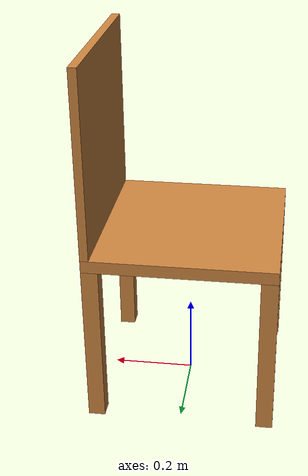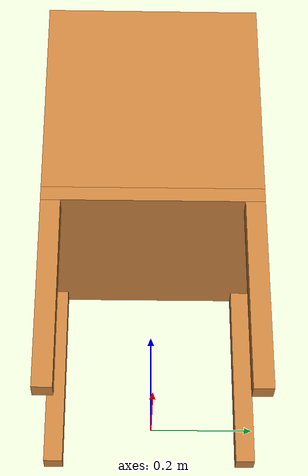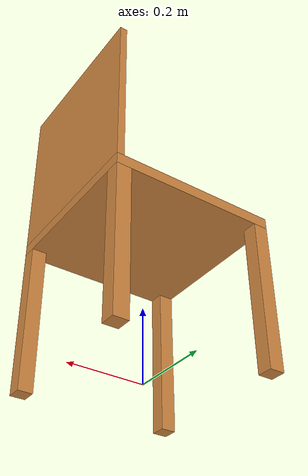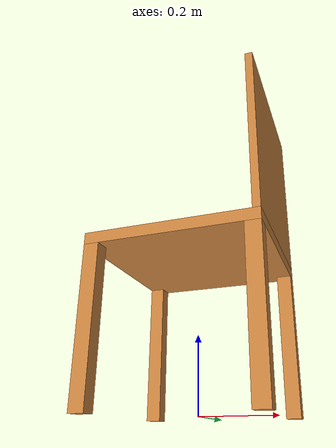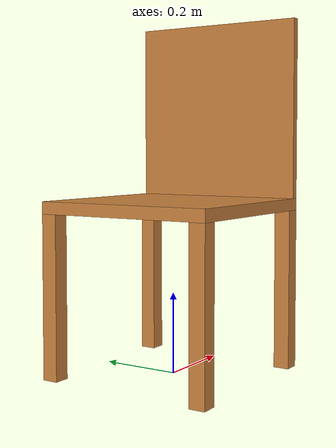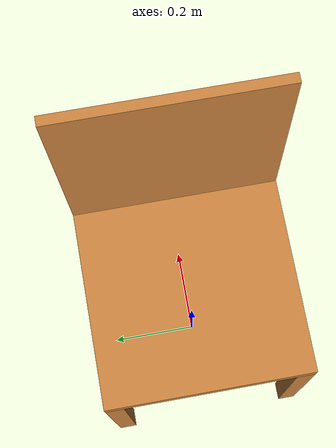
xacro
<?xml version="1.0"?>

<robot name="silla" xmlns:xacro="http://www.ros.org/wiki/xacro">

<xacro:property name="altura_respaldo" value="0.45" />
<xacro:property name="altura" value="0.4" />
<xacro:property name="ancho" value="0.45" />
<xacro:property name="largo" value="0.45" />

<link name="world" />

<joint name="silla" type="floating">
  <parent link="world"/>
  <child link="silla_link"/>
  <origin xyz="0 0 0" rpy="0 0 0" />
</joint>

<link name="silla_link">
  <visual>
    <geometry>
      <box size="${largo} ${ancho} 0.03" />
    </geometry>
    <origin rpy="0 0 0" xyz="0 0 ${(0.03/2)+altura}" />
      <material name="wood">
		<color rgba="${205/255} ${133/255} ${63/255} 1" />
    </material>
  </visual>
  <collision>
    <origin rpy="0 0 0" xyz="0 0 ${(0.03/2)+altura}" />
    <geometry>
      <box size="${largo} ${ancho} 0.03" />
    </geometry>
  </collision>
  <inertial>
    <origin rpy="0 0 0" xyz="0 0 ${(0.03/2)+altura}" />
    <mass value="1" />
      <inertia ixx="0.1" ixy="0.0" ixz="0.0" iyy="0.1" iyz="0.0" izz="0.1"/>
  </inertial>
</link>

<joint name="respaldo" type="fixed">
  <parent link="silla_link"/>
  <child link="respaldo_link"/>
  <origin xyz="${(largo/2)-(0.02/2)} 0 ${altura+0.03}" rpy="0 0 0" />
</joint>

<link name="respaldo_link">
  <visual>
    <geometry>
      <box size="0.02 ${ancho} ${altura_respaldo}" />
    </geometry>
    <origin rpy="0 0 0" xyz="0 0 ${altura_respaldo/2}" />
      <material name="wood" />
  </visual>
  <collision>
    <origin rpy="0 0 0" xyz="0 0 ${altura_respaldo/2}" />
    <geometry>
      <box size="0.02 ${ancho} ${altura_respaldo}" />
    </geometry>
  </collision>
  <inertial>
    <origin rpy="0 0 0" xyz="0 0 ${altura_respaldo/2}" />
    <mass value="0.2" />
      <inertia ixx="0.1" ixy="0.0" ixz="0.0" iyy="0.1" iyz="0.0" izz="0.1"/>
  </inertial>
</link>

<xacro:macro name="pata" params="id refx refy">
<joint name="pata_${id}" type="fixed">
  <parent link="silla_link"/>
  <child link="pata_${id}_link"/>
  <origin xyz="${refx*((largo/2)-0.02)} ${refy*((ancho/2)-0.02)} 0" rpy="0 0 0" />
</joint>

<link name="pata_${id}_link">
  <visual>
    <geometry>
      <box size="0.04 0.04 ${altura}" />
    </geometry>
    <origin rpy="0 0 0" xyz="0 0 ${altura/2}" />
      <material name="wood" />
  </visual>
  <collision>
    <origin rpy="0 0 0" xyz="0 0 ${altura/2}" />
    <geometry>
      <box size="0.04 0.04 ${altura}" />
    </geometry>
  </collision>
  <inertial>
    <origin rpy="0 0 0" xyz="0 0 ${altura/2}" />
    <mass value="0.2" />
      <inertia ixx="0.1" ixy="0.0" ixz="0.0" iyy="0.1" iyz="0.0" izz="0.1"/>
  </inertial>
</link>
</xacro:macro>

<xacro:pata id="1" refx="1" refy="1"/>
<xacro:pata id="2" refx="1" refy="-1"/>
<xacro:pata id="3" refx="-1" refy="-1"/>
<xacro:pata id="4" refx="-1" refy="1"/>

<gazebo reference="silla_link">
  <material>Gazebo/Grey</material>
  <mu1>1</mu1>
  <mu2>1</mu2>
  <selfCollide>true</selfCollide>
  <turnGravityOff>false</turnGravityOff>
</gazebo>

<gazebo reference="respaldo_link">
  <material>Gazebo/Grey</material>
  <mu1>1</mu1>
  <mu2>1</mu2>
  <selfCollide>true</selfCollide>
  <turnGravityOff>false</turnGravityOff>
</gazebo>

<xacro:macro name="gazebo_pata" params="id">
<gazebo reference="pata_${id}_link">
  <material>Gazebo/Wood</material>
  <mu1>1</mu1>
  <mu2>1</mu2>
  <selfCollide>true</selfCollide>
  <turnGravityOff>false</turnGravityOff>
</gazebo>
</xacro:macro>

<xacro:gazebo_pata id="1"/>
<xacro:gazebo_pata id="2"/>
<xacro:gazebo_pata id="3"/>
<xacro:gazebo_pata id="4"/>

</robot>
